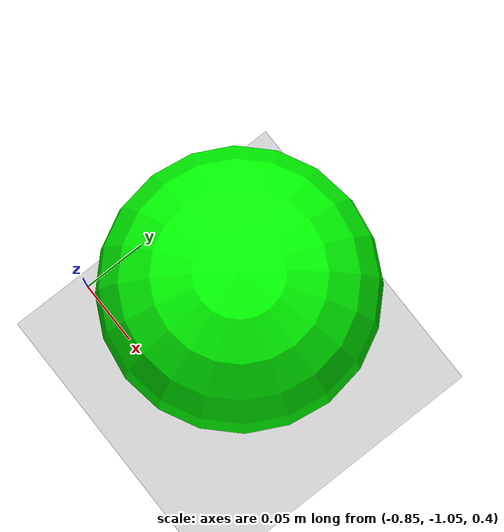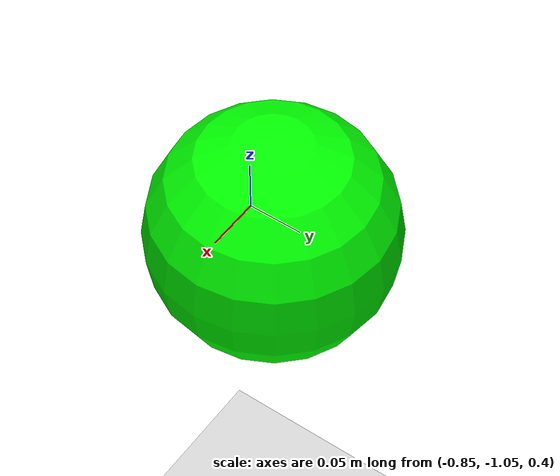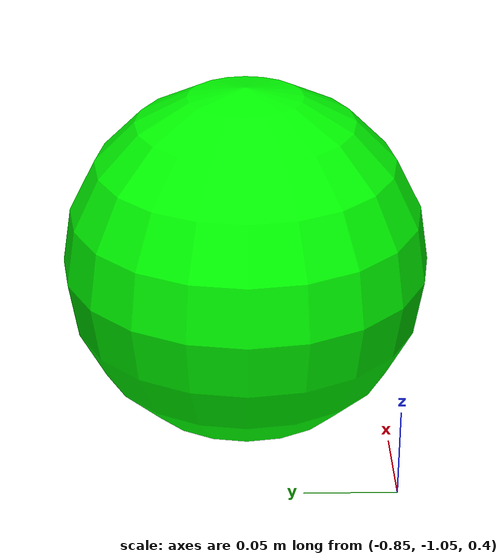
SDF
<?xml version="1.0" ?>
<sdf version="1.4">
  <!-- We use a custom world for the rrbot so that the camera angle is launched correctly -->

  <world name="default">
    <!-- Included light -->
    <include>
      <uri>https://fuel.gazebosim.org/1.0/OpenRobotics/models/Sun</uri>
    </include>

    <!-- Included model -->
    <include>
      <uri>https://fuel.gazebosim.org/1.0/OpenRobotics/models/Ground Plane</uri>
    </include>

    <include>
      <uri>
        model://sphere
      </uri>
      <name>sphere</name>
      <pose>-0.77 -0.97 0.5 0 0 0</pose>
    </include>

    <gravity>0 0 0</gravity>

    <!-- Focus camera on tall pendulum -->
    <gui fullscreen='0'>
      <camera name='user_camera'>
        <pose>4.927360 -4.376610 3.740080 0.000000 0.275643 2.356190</pose>
        <view_controller>orbit</view_controller>
      </camera>
    </gui>
  </world>
</sdf>

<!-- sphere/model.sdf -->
<!-- sphere.sdf -->
<sdf version="1.6">
    <model name="sphere">
        <!-- z = radius to rest on the ground -->
        <pose>0 0 0.1 0 0 0</pose>
        <link name="link">
            <visual name="visual">
                <geometry>
                    <sphere>
                        <radius>0.1</radius>
                    </sphere>
                </geometry>
                <material>
                    <ambient>0 1 0 1</ambient>
                    <diffuse>0 1 0 1</diffuse>
                    <specular>0.1 0.1 0.1 1</specular>
                    <emissive>0 0 0 1</emissive>
                </material>
            </visual>
            <collision name="collision">
                <geometry>
                    <sphere>
                        <radius>0.1</radius>
                    </sphere>
                </geometry>
            </collision>
        </link>
        <plugin
            filename="gz-sim-pose-publisher-system"
            name="gz::sim::systems::PosePublisher">
            <use_pose_vector_msg>true</use_pose_vector_msg>
            <publish_nested_model_pose>true</publish_nested_model_pose>
        </plugin>
    </model>
</sdf>
